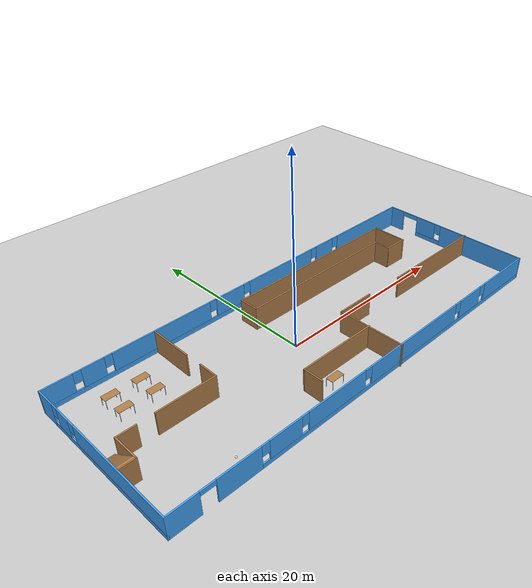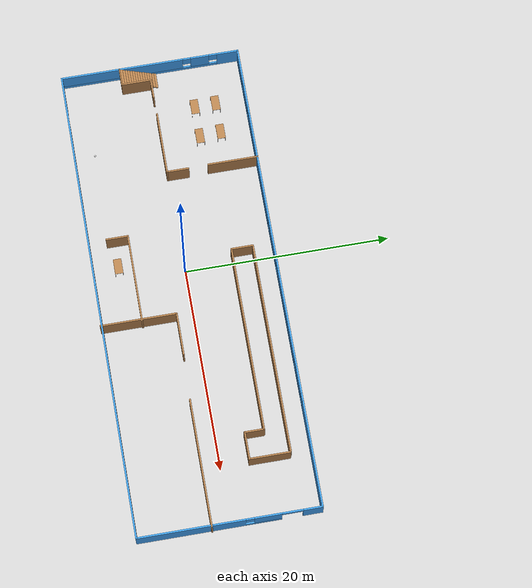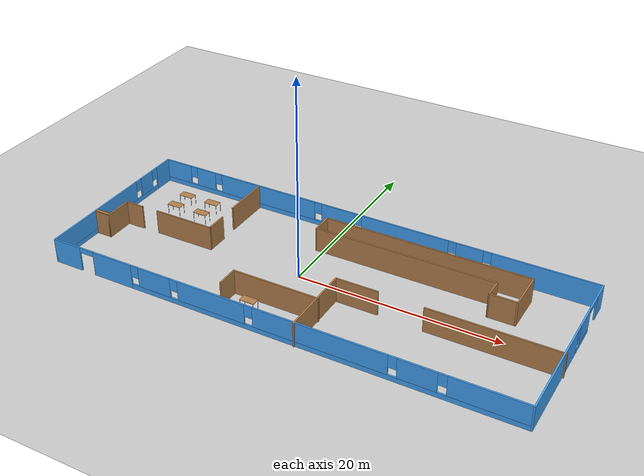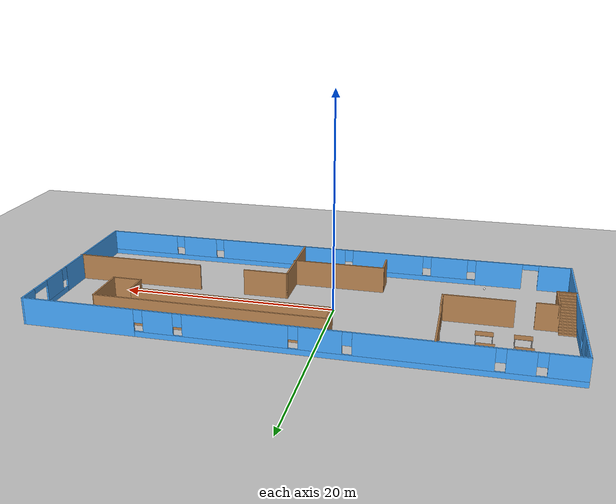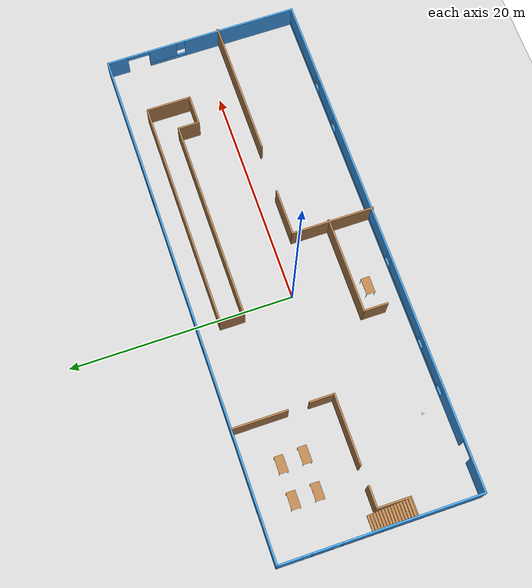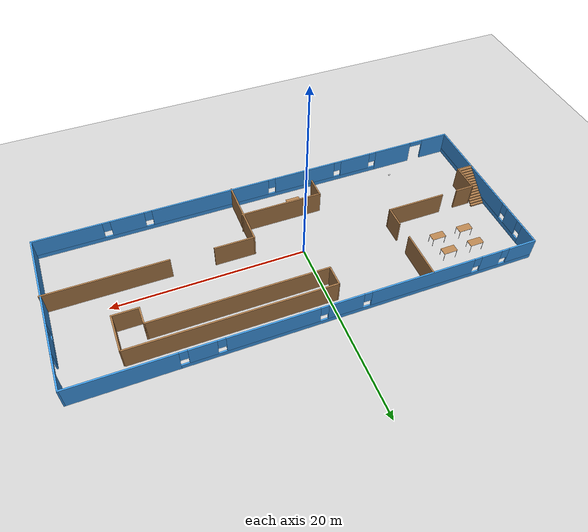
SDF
<sdf version="1.7">
 <world name="default">
  <plugin name="welcome" filename="libwelcome.so"/>
  <light name="sun" type="directional">
   <pose>0 0 10 0 -0 0</pose>
   <diffuse>0.8 0.8 0.8 1</diffuse>
   <specular>0.2 0.2 0.2 1</specular>
   <attenuation>
    <range>1000</range>
    <constant>0.9</constant>
    <linear>0.01</linear>
    <quadratic>0.001</quadratic>
   </attenuation>
   <direction>-0.5 0.1 -0.9</direction>
   <spot><inner_angle>0</inner_angle><outer_angle>0</outer_angle><falloff>0</falloff></spot>
  </light>
  <model name="ground_plane">
   <static>1</static>
   <link name="link">
    <collision name="collision">
     <geometry><plane><normal>0 0 1</normal><size>100 100</size></plane></geometry>
     <surface>
      <contact><collide_bitmask>65535</collide_bitmask></contact>
      <friction><ode><mu>100</mu><mu2>50</mu2></ode></friction>
     </surface>
    </collision>
    <visual name="visual">
     <cast_shadows>0</cast_shadows>
     <geometry><plane><normal>0 0 1</normal><size>100 100</size></plane></geometry>
     <material>
      <script><uri>file://media/materials/scripts/gazebo.material</uri><name>Gazebo/Grey</name></script>
     </material>
    </visual>
   </link>
  </model>
  <gravity>0 0 -9.8</gravity>
  <magnetic_field>6e-06 2.3e-05 -4.2e-05</magnetic_field>
  <atmosphere type="adiabatic"/>
  <physics type="ode">
   <max_step_size>0.001</max_step_size>
   <real_time_factor>1</real_time_factor>
   <real_time_update_rate>1000</real_time_update_rate>
  </physics>
  <scene><ambient>0.4 0.4 0.4 1</ambient><background>0.7 0.7 0.7 1</background><shadows>1</shadows></scene>
  <audio><device>default</device></audio>
  <spherical_coordinates>
   <surface_model>EARTH_WGS84</surface_model>
   <latitude_deg>0</latitude_deg>
   <longitude_deg>0</longitude_deg>
   <elevation>0</elevation>
   <heading_deg>0</heading_deg>
  </spherical_coordinates>
  <model name="building">
   <pose>2.33093 -0.091325 0 0 -0 0</pose>
   <link name="Stairs_0">
    <visual name="Stairs_0_Visual_0">
     <pose>-22.5369 0.453542 0.083333 0 -0 0</pose>
     <geometry><box><size>1.49222 0.233333 0.166667</size></box></geometry>
     <material>
      <script><uri>file://media/materials/scripts/gazebo.material</uri><name>Gazebo/Wood</name></script>
      <ambient>1 1 1 1</ambient>
     </material>
     <meta><layer>0</layer></meta>
    </visual>
    <collision name="Stairs_0_Collision_0">
     <geometry><box><size>1.49222 0.233333 0.166667</size></box></geometry>
     <pose>-22.5369 0.453542 0.083333 0 -0 0</pose>
    </collision>
    <visual name="Stairs_0_Visual_1">
     <pose>-22.5369 0.220208 0.25 0 -0 0</pose>
     <geometry><box><size>1.49222 0.233333 0.166667</size></box></geometry>
     <material>
      <script><uri>file://media/materials/scripts/gazebo.material</uri><name>Gazebo/Wood</name></script>
      <ambient>1 1 1 1</ambient>
     </material>
     <meta><layer>0</layer></meta>
    </visual>
    <collision name="Stairs_0_Collision_1">
     <geometry><box><size>1.49222 0.233333 0.166667</size></box></geometry>
     <pose>-22.5369 0.220208 0.25 0 -0 0</pose>
    </collision>
    <visual name="Stairs_0_Visual_2">
     <pose>-22.5369 -0.013125 0.416667 0 -0 0</pose>
     <geometry><box><size>1.49222 0.233333 0.166667</size></box></geometry>
     <material>
      <script><uri>file://media/materials/scripts/gazebo.material</uri><name>Gazebo/Wood</name></script>
      <ambient>1 1 1 1</ambient>
     </material>
     <meta><layer>0</layer></meta>
    </visual>
    <collision name="Stairs_0_Collision_2">
     <geometry><box><size>1.49222 0.233333 0.166667</size></box></geometry>
     <pose>-22.5369 -0.013125 0.416667 0 -0 0</pose>
    </collision>
    <visual name="Stairs_0_Visual_3">
     <pose>-22.5369 -0.246458 0.583333 0 -0 0</pose>
     <geometry><box><size>1.49222 0.233333 0.166667</size></box></geometry>
     <material>
      <script><uri>file://media/materials/scripts/gazebo.material</uri><name>Gazebo/Wood</name></script>
      <ambient>1 1 1 1</ambient>
     </material>
     <meta><layer>0</layer></meta>
    </visual>
    <collision name="Stairs_0_Collision_3">
     <geometry><box><size>1.49222 0.233333 0.166667</size></box></geometry>
     <pose>-22.5369 -0.246458 0.583333 0 -0 0</pose>
    </collision>
    <visual name="Stairs_0_Visual_4">
     <pose>-22.5369 -0.479792 0.75 0 -0 0</pose>
     <geometry><box><size>1.49222 0.233333 0.166667</size></box></geometry>
     <material>
      <script><uri>file://media/materials/scripts/gazebo.material</uri><name>Gazebo/Wood</name></script>
      <ambient>1 1 1 1</ambient>
     </material>
     <meta><layer>0</layer></meta>
    </visual>
    <collision name="Stairs_0_Collision_4">
     <geometry><box><size>1.49222 0.233333 0.166667</size></box></geometry>
     <pose>-22.5369 -0.479792 0.75 0 -0 0</pose>
    </collision>
    <visual name="Stairs_0_Visual_5">
     <pose>-22.5369 -0.713125 0.916667 0 -0 0</pose>
     <geometry><box><size>1.49222 0.233333 0.166667</size></box></geometry>
     <material>
      <script><uri>file://media/materials/scripts/gazebo.material</uri><name>Gazebo/Wood</name></script>
      <ambient>1 1 1 1</ambient>
     </material>
     <meta><layer>0</layer></meta>
    </visual>
    <collision name="Stairs_0_Collision_5">
     <geometry><box><size>1.49222 0.233333 0.166667</size></box></geometry>
     <pose>-22.5369 -0.713125 0.916667 0 -0 0</pose>
    </collision>
    <visual name="Stairs_0_Visual_6">
     <pose>-22.5369 -0.946458 1.08333 0 -0 0</pose>
     <geometry><box><size>1.49222 0.233333 0.166667</size></box></geometry>
     <material>
      <script><uri>file://media/materials/scripts/gazebo.material</uri><name>Gazebo/Wood</name></script>
      <ambient>1 1 1 1</ambient>
     </material>
     <meta><layer>0</layer></meta>
    </visual>
    <collision name="Stairs_0_Collision_6">
     <geometry><box><size>1.49222 0.233333 0.166667</size></box></geometry>
     <pose>-22.5369 -0.946458 1.08333 0 -0 0</pose>
    </collision>
    <visual name="Stairs_0_Visual_7">
     <pose>-22.5369 -1.17979 1.25 0 -0 0</pose>
     <geometry><box><size>1.49222 0.233333 0.166667</size></box></geometry>
     <material>
      <script><uri>file://media/materials/scripts/gazebo.material</uri><name>Gazebo/Wood</name></script>
      <ambient>1 1 1 1</ambient>
     </material>
     <meta><layer>0</layer></meta>
    </visual>
    <collision name="Stairs_0_Collision_7">
     <geometry><box><size>1.49222 0.233333 0.166667</size></box></geometry>
     <pose>-22.5369 -1.17979 1.25 0 -0 0</pose>
    </collision>
    <visual name="Stairs_0_Visual_8">
     <pose>-22.5369 -1.41312 1.41667 0 -0 0</pose>
     <geometry><box><size>1.49222 0.233333 0.166667</size></box></geometry>
     <material>
      <script><uri>file://media/materials/scripts/gazebo.material</uri><name>Gazebo/Wood</name></script>
      <ambient>1 1 1 1</ambient>
     </material>
     <meta><layer>0</layer></meta>
    </visual>
    <collision name="Stairs_0_Collision_8">
     <geometry><box><size>1.49222 0.233333 0.166667</size></box></geometry>
     <pose>-22.5369 -1.41312 1.41667 0 -0 0</pose>
    </collision>
    <visual name="Stairs_0_Visual_9">
     <pose>-22.5369 -1.64646 1.58333 0 -0 0</pose>
     <geometry><box><size>1.49222 0.233333 0.166667</size></box></geometry>
     <material>
      <script><uri>file://media/materials/scripts/gazebo.material</uri><name>Gazebo/Wood</name></script>
      <ambient>1 1 1 1</ambient>
     </material>
     <meta><layer>0</layer></meta>
    </visual>
    <collision name="Stairs_0_Collision_9">
     <geometry><box><size>1.49222 0.233333 0.166667</size></box></geometry>
     <pose>-22.5369 -1.64646 1.58333 0 -0 0</pose>
    </collision>
    <visual name="Stairs_0_Visual_10">
     <pose>-22.5369 -1.87979 1.75 0 -0 0</pose>
     <geometry><box><size>1.49222 0.233333 0.166667</size></box></geometry>
     <material>
      <script><uri>file://media/materials/scripts/gazebo.material</uri><name>Gazebo/Wood</name></script>
      <ambient>1 1 1 1</ambient>
     </material>
     <meta><layer>0</layer></meta>
    </visual>
    <collision name="Stairs_0_Collision_10">
     <geometry><box><size>1.49222 0.233333 0.166667</size></box></geometry>
     <pose>-22.5369 -1.87979 1.75 0 -0 0</pose>
    </collision>
    <visual name="Stairs_0_Visual_11">
     <pose>-22.5369 -2.11313 1.91667 0 -0 0</pose>
     <geometry><box><size>1.49222 0.233333 0.166667</size></box></geometry>
     <material>
      <script><uri>file://media/materials/scripts/gazebo.material</uri><name>Gazebo/Wood</name></script>
      <ambient>1 1 1 1</ambient>
     </material>
     <meta><layer>0</layer></meta>
    </visual>
    <collision name="Stairs_0_Collision_11">
     <geometry><box><size>1.49222 0.233333 0.166667</size></box></geometry>
     <pose>-22.5369 -2.11313 1.91667 0 -0 0</pose>
    </collision>
    <visual name="Stairs_0_Visual_12">
     <pose>-22.5369 -2.34646 2.08333 0 -0 0</pose>
     <geometry><box><size>1.49222 0.233333 0.166667</size></box></geometry>
     <material>
      <script><uri>file://media/materials/scripts/gazebo.material</uri><name>Gazebo/Wood</name></script>
      <ambient>1 1 1 1</ambient>
     </material>
     <meta><layer>0</layer></meta>
    </visual>
    <collision name="Stairs_0_Collision_12">
     <geometry><box><size>1.49222 0.233333 0.166667</size></box></geometry>
     <pose>-22.5369 -2.34646 2.08333 0 -0 0</pose>
    </collision>
    <visual name="Stairs_0_Visual_13">
     <pose>-22.5369 -2.57979 2.25 0 -0 0</pose>
     <geometry><box><size>1.49222 0.233333 0.166667</size></box></geometry>
     <material>
      <script><uri>file://media/materials/scripts/gazebo.material</uri><name>Gazebo/Wood</name></script>
      <ambient>1 1 1 1</ambient>
     </material>
     <meta><layer>0</layer></meta>
    </visual>
    <collision name="Stairs_0_Collision_13">
     <geometry><box><size>1.49222 0.233333 0.166667</size></box></geometry>
     <pose>-22.5369 -2.57979 2.25 0 -0 0</pose>
    </collision>
    <visual name="Stairs_0_Visual_14">
     <pose>-22.5369 -2.81312 2.41667 0 -0 0</pose>
     <geometry><box><size>1.49222 0.233333 0.166667</size></box></geometry>
     <material>
      <script><uri>file://media/materials/scripts/gazebo.material</uri><name>Gazebo/Wood</name></script>
      <ambient>1 1 1 1</ambient>
     </material>
     <meta><layer>0</layer></meta>
    </visual>
    <collision name="Stairs_0_Collision_14">
     <geometry><box><size>1.49222 0.233333 0.166667</size></box></geometry>
     <pose>-22.5369 -2.81312 2.41667 0 -0 0</pose>
    </collision>
   </link>
   <link name="Wall_10">
    <collision name="Wall_10_Collision">
     <geometry><box><size>2.25 0.15 2.5</size></box></geometry>
     <pose>0 0 1.25 0 -0 0</pose>
    </collision>
    <visual name="Wall_10_Visual">
     <pose>0 0 1.25 0 -0 0</pose>
     <geometry><box><size>2.25 0.15 2.5</size></box></geometry>
     <material>
      <script><uri>file://media/materials/scripts/gazebo.material</uri><name>Gazebo/Wood</name></script>
      <ambient>1 1 1 1</ambient>
     </material>
     <meta><layer>0</layer></meta>
    </visual>
    <pose>-11.9541 0.969658 0 0 -0 -1.5708</pose>
   </link>
   <link name="Wall_11">
    <collision name="Wall_11_Collision">
     <geometry><box><size>6.25 0.15 2.5</size></box></geometry>
     <pose>0 0 1.25 0 -0 0</pose>
    </collision>
    <visual name="Wall_11_Visual">
     <pose>0 0 1.25 0 -0 0</pose>
     <geometry><box><size>6.25 0.15 2.5</size></box></geometry>
     <material>
      <script><uri>file://media/materials/scripts/gazebo.material</uri><name>Gazebo/Wood</name></script>
      <ambient>1 1 1 1</ambient>
     </material>
     <meta><layer>0</layer></meta>
    </visual>
    <pose>-15.0041 -0.080342 0 0 -0 3.14159</pose>
   </link>
   <link name="Wall_13">
    <collision name="Wall_13_Collision">
     <geometry><box><size>1.75 0.15 2.5</size></box></geometry>
     <pose>0 0 1.25 0 -0 0</pose>
    </collision>
    <visual name="Wall_13_Visual">
     <pose>0 0 1.25 0 -0 0</pose>
     <geometry><box><size>1.75 0.15 2.5</size></box></geometry>
     <material>
      <script><uri>file://media/materials/scripts/gazebo.material</uri><name>Gazebo/Wood</name></script>
      <ambient>1 1 1 1</ambient>
     </material>
     <meta><layer>0</layer></meta>
    </visual>
    <pose>-22.5367 -2.9641 0 0 -0 0</pose>
   </link>
   <link name="Wall_14">
    <collision name="Wall_14_Collision">
     <geometry><box><size>3 0.15 2.5</size></box></geometry>
     <pose>0 0 1.25 0 -0 0</pose>
    </collision>
    <visual name="Wall_14_Visual">
     <pose>0 0 1.25 0 -0 0</pose>
     <geometry><box><size>3 0.15 2.5</size></box></geometry>
     <material>
      <script><uri>file://media/materials/scripts/gazebo.material</uri><name>Gazebo/Wood</name></script>
      <ambient>1 1 1 1</ambient>
     </material>
     <meta><layer>0</layer></meta>
    </visual>
    <pose>-21.7367 -1.5391 0 0 -0 1.5708</pose>
   </link>
   <link name="Wall_15">
    <collision name="Wall_15_Collision">
     <geometry><box><size>2 0.15 2.5</size></box></geometry>
     <pose>0 0 1.25 0 -0 0</pose>
    </collision>
    <visual name="Wall_15_Visual">
     <pose>0 0 1.25 0 -0 0</pose>
     <geometry><box><size>2 0.15 2.5</size></box></geometry>
     <material>
      <script><uri>file://media/materials/scripts/gazebo.material</uri><name>Gazebo/Wood</name></script>
      <ambient>1 1 1 1</ambient>
     </material>
     <meta><layer>0</layer></meta>
    </visual>
    <pose>-20.8117 -0.1141 0 0 -0 0</pose>
   </link>
   <link name="Wall_17">
    <collision name="Wall_17_Collision">
     <geometry><box><size>7.5 0.15 2.5</size></box></geometry>
     <pose>0 0 1.25 0 -0 0</pose>
    </collision>
    <visual name="Wall_17_Visual">
     <pose>0 0 1.25 0 -0 0</pose>
     <geometry><box><size>7.5 0.15 2.5</size></box></geometry>
     <material>
      <script><uri>file://media/materials/scripts/gazebo.material</uri><name>Gazebo/Wood</name></script>
      <ambient>1 1 1 1</ambient>
     </material>
     <meta><layer>0</layer></meta>
    </visual>
    <pose>2.40023 -5.17853 0 0 -0 1.5708</pose>
   </link>
   <link name="Wall_18">
    <collision name="Wall_18_Collision">
     <geometry><box><size>4.25 0.15 2.5</size></box></geometry>
     <pose>0 0 1.25 0 -0 0</pose>
    </collision>
    <visual name="Wall_18_Visual">
     <pose>0 0 1.25 0 -0 0</pose>
     <geometry><box><size>4.25 0.15 2.5</size></box></geometry>
     <material>
      <script><uri>file://media/materials/scripts/gazebo.material</uri><name>Gazebo/Wood</name></script>
      <ambient>1 1 1 1</ambient>
     </material>
     <meta><layer>0</layer></meta>
    </visual>
    <pose>4.45023 -1.50353 0 0 -0 0</pose>
   </link>
   <link name="Wall_20">
    <collision name="Wall_20_Collision">
     <geometry><box><size>12.5 0.15 2.5</size></box></geometry>
     <pose>0 0 1.25 0 -0 0</pose>
    </collision>
    <visual name="Wall_20_Visual">
     <pose>0 0 1.25 0 -0 0</pose>
     <geometry><box><size>12.5 0.15 2.5</size></box></geometry>
     <material>
      <script><uri>file://media/materials/scripts/gazebo.material</uri><name>Gazebo/Wood</name></script>
      <ambient>1 1 1 1</ambient>
     </material>
     <meta><layer>0</layer></meta>
    </visual>
    <pose>17.1842 -1.64348 0 0 -0 0</pose>
   </link>
   <link name="Wall_22">
    <collision name="Wall_22_Collision">
     <geometry><box><size>8.75 0.15 2.5</size></box></geometry>
     <pose>0 0 1.25 0 -0 0</pose>
    </collision>
    <visual name="Wall_22_Visual">
     <pose>0 0 1.25 0 -0 0</pose>
     <geometry><box><size>8.75 0.15 2.5</size></box></geometry>
     <material>
      <script><uri>file://media/materials/scripts/gazebo.material</uri><name>Gazebo/Wood</name></script>
      <ambient>1 1 1 1</ambient>
     </material>
     <meta><layer>0</layer></meta>
    </visual>
    <pose>-1.79216 -4.87186 0 0 -0 3.14159</pose>
   </link>
   <link name="Wall_23">
    <collision name="Wall_23_Collision">
     <geometry><box><size>2.25 0.15 2.5</size></box></geometry>
     <pose>0 0 1.25 0 -0 0</pose>
    </collision>
    <visual name="Wall_23_Visual">
     <pose>0 0 1.25 0 -0 0</pose>
     <geometry><box><size>2.25 0.15 2.5</size></box></geometry>
     <material>
      <script><uri>file://media/materials/scripts/gazebo.material</uri><name>Gazebo/Wood</name></script>
      <ambient>1 1 1 1</ambient>
     </material>
     <meta><layer>0</layer></meta>
    </visual>
    <pose>-6.09216 -5.92186 0 0 -0 -1.5708</pose>
   </link>
   <link name="Wall_25">
    <collision name="Wall_25_Collision">
     <geometry><box><size>2.25 0.15 2.5</size></box></geometry>
     <pose>0 0 1.25 0 -0 0</pose>
    </collision>
    <visual name="Wall_25_Visual">
     <pose>0 0 1.25 0 -0 0</pose>
     <geometry><box><size>2.25 0.15 2.5</size></box></geometry>
     <material>
      <script><uri>file://media/materials/scripts/gazebo.material</uri><name>Gazebo/Wood</name></script>
      <ambient>1 1 1 1</ambient>
     </material>
     <meta><layer>0</layer></meta>
    </visual>
    <pose>-3.08802 5.80792 0 0 -0 -1.5708</pose>
   </link>
   <link name="Wall_26">
    <collision name="Wall_26_Collision">
     <geometry><box><size>18.25 0.15 2.5</size></box></geometry>
     <pose>0 0 1.25 0 -0 0</pose>
    </collision>
    <visual name="Wall_26_Visual">
     <pose>0 0 1.25 0 -0 0</pose>
     <geometry><box><size>18.25 0.15 2.5</size></box></geometry>
     <material>
      <script><uri>file://media/materials/scripts/gazebo.material</uri><name>Gazebo/Wood</name></script>
      <ambient>1 1 1 1</ambient>
     </material>
     <meta><layer>0</layer></meta>
    </visual>
    <pose>5.96199 4.75792 0 0 -0 0</pose>
   </link>
   <link name="Wall_27">
    <collision name="Wall_27_Collision">
     <geometry><box><size>2 0.15 2.5</size></box></geometry>
     <pose>0 0 1.25 0 -0 0</pose>
    </collision>
    <visual name="Wall_27_Visual">
     <pose>0 0 1.25 0 -0 0</pose>
     <geometry><box><size>2 0.15 2.5</size></box></geometry>
     <material>
      <script><uri>file://media/materials/scripts/gazebo.material</uri><name>Gazebo/Wood</name></script>
      <ambient>1 1 1 1</ambient>
     </material>
     <meta><layer>0</layer></meta>
    </visual>
    <pose>15.012 3.83292 0 0 -0 -1.5708</pose>
   </link>
   <link name="Wall_28">
    <collision name="Wall_28_Collision">
     <geometry><box><size>2.75 0.15 2.5</size></box></geometry>
     <pose>0 0 1.25 0 -0 0</pose>
    </collision>
    <visual name="Wall_28_Visual">
     <pose>0 0 1.25 0 -0 0</pose>
     <geometry><box><size>2.75 0.15 2.5</size></box></geometry>
     <material>
      <script><uri>file://media/materials/scripts/gazebo.material</uri><name>Gazebo/Wood</name></script>
      <ambient>1 1 1 1</ambient>
     </material>
     <meta><layer>0</layer></meta>
    </visual>
    <pose>16.312 2.90792 0 0 -0 0</pose>
   </link>
   <link name="Wall_29">
    <collision name="Wall_29_Collision">
     <geometry><box><size>4.03477 0.15 2.5</size></box></geometry>
     <pose>0 0 1.25 0 -0 0</pose>
    </collision>
    <visual name="Wall_29_Visual">
     <pose>0 0 1.25 0 -0 0</pose>
     <geometry><box><size>4.03477 0.15 2.5</size></box></geometry>
     <material>
      <script><uri>file://media/materials/scripts/gazebo.material</uri><name>Gazebo/Wood</name></script>
      <ambient>1 1 1 1</ambient>
     </material>
     <meta><layer>0</layer></meta>
    </visual>
    <pose>17.612 4.8503 0 0 -0 1.5708</pose>
   </link>
   <link name="Wall_3">
    <pose>-23.3592 0.053528 0 0 -0 -1.5708</pose>
    <visual name="Wall_3_Visual_0">
     <pose>-7.78298 0 1.25 0 -0 0</pose>
     <geometry><box><size>2.18405 0.15 2.5</size></box></geometry>
     <material>
      <script><uri>file://media/materials/scripts/gazebo.material</uri><name>Gazebo/Grey</name></script>
      <ambient>0.258824 0.635294 0.960784 1</ambient>
     </material>
     <meta><layer>0</layer></meta>
    </visual>
    <collision name="Wall_3_Collision_0">
     <geometry><box><size>2.18405 0.15 2.5</size></box></geometry>
     <pose>-7.78298 0 1.25 0 -0 0</pose>
    </collision>
    <visual name="Wall_3_Visual_1">
     <pose>1.09202 0 0.25 0 -0 0</pose>
     <geometry><box><size>15.566 0.15 0.5</size></box></geometry>
     <material>
      <script><uri>file://media/materials/scripts/gazebo.material</uri><name>Gazebo/Grey</name></script>
      <ambient>0.258824 0.635294 0.960784 1</ambient>
     </material>
     <meta><layer>0</layer></meta>
    </visual>
    <collision name="Wall_3_Collision_1">
     <geometry><box><size>15.566 0.15 0.5</size></box></geometry>
     <pose>1.09202 0 0.25 0 -0 0</pose>
    </collision>
    <visual name="Wall_3_Visual_2">
     <pose>-4.98014 0 1.5 0 -0 0</pose>
     <geometry><box><size>1.82162 0.15 2</size></box></geometry>
     <material>
      <script><uri>file://media/materials/scripts/gazebo.material</uri><name>Gazebo/Grey</name></script>
      <ambient>0.258824 0.635294 0.960784 1</ambient>
     </material>
     <meta><layer>0</layer></meta>
    </visual>
    <collision name="Wall_3_Collision_2">
     <geometry><box><size>1.82162 0.15 2</size></box></geometry>
     <pose>-4.98014 0 1.5 0 -0 0</pose>
    </collision>
    <visual name="Wall_3_Visual_3">
     <pose>2.80283 0 1.5 0 -0 0</pose>
     <geometry><box><size>12.1443 0.15 2</size></box></geometry>
     <material>
      <script><uri>file://media/materials/scripts/gazebo.material</uri><name>Gazebo/Grey</name></script>
      <ambient>0.258824 0.635294 0.960784 1</ambient>
     </material>
     <meta><layer>0</layer></meta>
    </visual>
    <collision name="Wall_3_Collision_3">
     <geometry><box><size>12.1443 0.15 2</size></box></geometry>
     <pose>2.80283 0 1.5 0 -0 0</pose>
    </collision>
    <visual name="Wall_3_Visual_4">
     <pose>-6.29095 0 1.9 0 -0 0</pose>
     <geometry><box><size>0.8 0.15 1.2</size></box></geometry>
     <material>
      <script><uri>file://media/materials/scripts/gazebo.material</uri><name>Gazebo/Grey</name></script>
      <ambient>0.258824 0.635294 0.960784 1</ambient>
     </material>
     <meta><layer>0</layer></meta>
    </visual>
    <collision name="Wall_3_Collision_4">
     <geometry><box><size>0.8 0.15 1.2</size></box></geometry>
     <pose>-6.29095 0 1.9 0 -0 0</pose>
    </collision>
    <visual name="Wall_3_Visual_5">
     <pose>-3.66933 0 1.9 0 -0 0</pose>
     <geometry><box><size>0.8 0.15 1.2</size></box></geometry>
     <material>
      <script><uri>file://media/materials/scripts/gazebo.material</uri><name>Gazebo/Grey</name></script>
      <ambient>0.258824 0.635294 0.960784 1</ambient>
     </material>
     <meta><layer>0</layer></meta>
    </visual>
    <collision name="Wall_3_Collision_5">
     <geometry><box><size>0.8 0.15 1.2</size></box></geometry>
     <pose>-3.66933 0 1.9 0 -0 0</pose>
    </collision>
   </link>
   <link name="Wall_32">
    <collision name="Wall_32_Collision">
     <geometry><box><size>20.75 0.15 2.5</size></box></geometry>
     <pose>0 0 1.25 0 -0 0</pose>
    </collision>
    <visual name="Wall_32_Visual">
     <pose>0 0 1.25 0 -0 0</pose>
     <geometry><box><size>20.75 0.15 2.5</size></box></geometry>
     <material>
      <script><uri>file://media/materials/scripts/gazebo.material</uri><name>Gazebo/Wood</name></script>
      <ambient>1 1 1 1</ambient>
     </material>
     <meta><layer>0</layer></meta>
    </visual>
    <pose>7.21199 6.85792 0 0 -0 0</pose>
   </link>
   <link name="Wall_4">
    <pose>-0.05924 -8.74647 0 0 -0 0</pose>
    <visual name="Wall_4_Visual_0">
     <pose>-21.8554 0 1.25 0 -0 0</pose>
     <geometry><box><size>3.03917 0.15 2.5</size></box></geometry>
     <material>
      <script><uri>file://media/materials/scripts/gazebo.material</uri><name>Gazebo/Grey</name></script>
      <ambient>0.258824 0.635294 0.960784 1</ambient>
     </material>
     <meta><layer>0</layer></meta>
    </visual>
    <collision name="Wall_4_Collision_0">
     <geometry><box><size>3.03917 0.15 2.5</size></box></geometry>
     <pose>-21.8554 0 1.25 0 -0 0</pose>
    </collision>
    <visual name="Wall_4_Visual_1">
     <pose>-16.6693 0 1.25 0 -0 0</pose>
     <geometry><box><size>4.33312 0.15 2.5</size></box></geometry>
     <material>
      <script><uri>file://media/materials/scripts/gazebo.material</uri><name>Gazebo/Grey</name></script>
      <ambient>0.258824 0.635294 0.960784 1</ambient>
     </material>
     <meta><layer>0</layer></meta>
    </visual>
    <collision name="Wall_4_Collision_1">
     <geometry><box><size>4.33312 0.15 2.5</size></box></geometry>
     <pose>-16.6693 0 1.25 0 -0 0</pose>
    </collision>
    <visual name="Wall_4_Visual_2">
     <pose>4.43614 0 0.25 0 -0 0</pose>
     <geometry><box><size>37.8777 0.15 0.5</size></box></geometry>
     <material>
      <script><uri>file://media/materials/scripts/gazebo.material</uri><name>Gazebo/Grey</name></script>
      <ambient>0.258824 0.635294 0.960784 1</ambient>
     </material>
     <meta><layer>0</layer></meta>
    </visual>
    <collision name="Wall_4_Collision_2">
     <geometry><box><size>37.8777 0.15 0.5</size></box></geometry>
     <pose>4.43614 0 0.25 0 -0 0</pose>
    </collision>
    <visual name="Wall_4_Visual_3">
     <pose>-11.9626 0 1.5 0 -0 0</pose>
     <geometry><box><size>3.4802 0.15 2</size></box></geometry>
     <material>
      <script><uri>file://media/materials/scripts/gazebo.material</uri><name>Gazebo/Grey</name></script>
      <ambient>0.258824 0.635294 0.960784 1</ambient>
     </material>
     <meta><layer>0</layer></meta>
    </visual>
    <collision name="Wall_4_Collision_3">
     <geometry><box><size>3.4802 0.15 2</size></box></geometry>
     <pose>-11.9626 0 1.5 0 -0 0</pose>
    </collision>
    <visual name="Wall_4_Visual_4">
     <pose>-5.94358 0 1.5 0 -0 0</pose>
     <geometry><box><size>6.95786 0.15 2</size></box></geometry>
     <material>
      <script><uri>file://media/materials/scripts/gazebo.material</uri><name>Gazebo/Grey</name></script>
      <ambient>0.258824 0.635294 0.960784 1</ambient>
     </material>
     <meta><layer>0</layer></meta>
    </visual>
    <collision name="Wall_4_Collision_4">
     <geometry><box><size>6.95786 0.15 2</size></box></geometry>
     <pose>-5.94358 0 1.5 0 -0 0</pose>
    </collision>
    <visual name="Wall_4_Visual_5">
     <pose>4.73017 0 1.5 0 -0 0</pose>
     <geometry><box><size>12.7896 0.15 2</size></box></geometry>
     <material>
      <script><uri>file://media/materials/scripts/gazebo.material</uri><name>Gazebo/Grey</name></script>
      <ambient>0.258824 0.635294 0.960784 1</ambient>
     </material>
     <meta><layer>0</layer></meta>
    </visual>
    <collision name="Wall_4_Collision_5">
     <geometry><box><size>12.7896 0.15 2</size></box></geometry>
     <pose>4.73017 0 1.5 0 -0 0</pose>
    </collision>
    <visual name="Wall_4_Visual_6">
     <pose>13.6918 0 1.5 0 -0 0</pose>
     <geometry><box><size>3.5337 0.15 2</size></box></geometry>
     <material>
      <script><uri>file://media/materials/scripts/gazebo.material</uri><name>Gazebo/Grey</name></script>
      <ambient>0.258824 0.635294 0.960784 1</ambient>
     </material>
     <meta><layer>0</layer></meta>
    </visual>
    <collision name="Wall_4_Collision_6">
     <geometry><box><size>3.5337 0.15 2</size></box></geometry>
     <pose>13.6918 0 1.5 0 -0 0</pose>
    </collision>
    <visual name="Wall_4_Visual_7">
     <pose>19.8168 0 1.5 0 -0 0</pose>
     <geometry><box><size>7.11631 0.15 2</size></box></geometry>
     <material>
      <script><uri>file://media/materials/scripts/gazebo.material</uri><name>Gazebo/Grey</name></script>
      <ambient>0.258824 0.635294 0.960784 1</ambient>
     </material>
     <meta><layer>0</layer></meta>
    </visual>
    <collision name="Wall_4_Collision_7">
     <geometry><box><size>7.11631 0.15 2</size></box></geometry>
     <pose>19.8168 0 1.5 0 -0 0</pose>
    </collision>
    <visual name="Wall_4_Visual_8">
     <pose>-14.1027 0 1.9 0 -0 0</pose>
     <geometry><box><size>0.8 0.15 1.2</size></box></geometry>
     <material>
      <script><uri>file://media/materials/scripts/gazebo.material</uri><name>Gazebo/Grey</name></script>
      <ambient>0.258824 0.635294 0.960784 1</ambient>
     </material>
     <meta><layer>0</layer></meta>
    </visual>
    <collision name="Wall_4_Collision_8">
     <geometry><box><size>0.8 0.15 1.2</size></box></geometry>
     <pose>-14.1027 0 1.9 0 -0 0</pose>
    </collision>
    <visual name="Wall_4_Visual_9">
     <pose>-9.82251 0 1.9 0 -0 0</pose>
     <geometry><box><size>0.8 0.15 1.2</size></box></geometry>
     <material>
      <script><uri>file://media/materials/scripts/gazebo.material</uri><name>Gazebo/Grey</name></script>
      <ambient>0.258824 0.635294 0.960784 1</ambient>
     </material>
     <meta><layer>0</layer></meta>
    </visual>
    <collision name="Wall_4_Collision_9">
     <geometry><box><size>0.8 0.15 1.2</size></box></geometry>
     <pose>-9.82251 0 1.9 0 -0 0</pose>
    </collision>
    <visual name="Wall_4_Visual_10">
     <pose>-2.06465 0 1.9 0 -0 0</pose>
     <geometry><box><size>0.8 0.15 1.2</size></box></geometry>
     <material>
      <script><uri>file://media/materials/scripts/gazebo.material</uri><name>Gazebo/Grey</name></script>
      <ambient>0.258824 0.635294 0.960784 1</ambient>
     </material>
     <meta><layer>0</layer></meta>
    </visual>
    <collision name="Wall_4_Collision_10">
     <geometry><box><size>0.8 0.15 1.2</size></box></geometry>
     <pose>-2.06465 0 1.9 0 -0 0</pose>
    </collision>
    <visual name="Wall_4_Visual_11">
     <pose>11.525 0 1.9 0 -0 0</pose>
     <geometry><box><size>0.8 0.15 1.2</size></box></geometry>
     <material>
      <script><uri>file://media/materials/scripts/gazebo.material</uri><name>Gazebo/Grey</name></script>
      <ambient>0.258824 0.635294 0.960784 1</ambient>
     </material>
     <meta><layer>0</layer></meta>
    </visual>
    <collision name="Wall_4_Collision_11">
     <geometry><box><size>0.8 0.15 1.2</size></box></geometry>
     <pose>11.525 0 1.9 0 -0 0</pose>
    </collision>
    <visual name="Wall_4_Visual_12">
     <pose>15.8587 0 1.9 0 -0 0</pose>
     <geometry><box><size>0.8 0.15 1.2</size></box></geometry>
     <material>
      <script><uri>file://media/materials/scripts/gazebo.material</uri><name>Gazebo/Grey</name></script>
      <ambient>0.258824 0.635294 0.960784 1</ambient>
     </material>
     <meta><layer>0</layer></meta>
    </visual>
    <collision name="Wall_4_Collision_12">
     <geometry><box><size>0.8 0.15 1.2</size></box></geometry>
     <pose>15.8587 0 1.9 0 -0 0</pose>
    </collision>
    <visual name="Wall_4_Visual_13">
     <pose>-19.5858 0 2.25 0 -0 0</pose>
     <geometry><box><size>1.5 0.15 0.5</size></box></geometry>
     <material>
      <script><uri>file://media/materials/scripts/gazebo.material</uri><name>Gazebo/Grey</name></script>
      <ambient>0.258824 0.635294 0.960784 1</ambient>
     </material>
     <meta><layer>0</layer></meta>
    </visual>
    <collision name="Wall_4_Collision_13">
     <geometry><box><size>1.5 0.15 0.5</size></box></geometry>
     <pose>-19.5858 0 2.25 0 -0 0</pose>
    </collision>
   </link>
   <link name="Wall_5">
    <pose>23.2408 0.053528 0 0 -0 1.5708</pose>
    <visual name="Wall_5_Visual_0">
     <pose>-3.65888 0 1.25 0 -0 0</pose>
     <geometry><box><size>10.4323 0.15 2.5</size></box></geometry>
     <material>
      <script><uri>file://media/materials/scripts/gazebo.material</uri><name>Gazebo/Grey</name></script>
      <ambient>0.258824 0.635294 0.960784 1</ambient>
     </material>
     <meta><layer>0</layer></meta>
    </visual>
    <collision name="Wall_5_Collision_0">
     <geometry><box><size>10.4323 0.15 2.5</size></box></geometry>
     <pose>-3.65888 0 1.25 0 -0 0</pose>
    </collision>
    <visual name="Wall_5_Visual_1">
     <pose>7.92022 0 1.25 0 -0 0</pose>
     <geometry><box><size>1.90956 0.15 2.5</size></box></geometry>
     <material>
      <script><uri>file://media/materials/scripts/gazebo.material</uri><name>Gazebo/Grey</name></script>
      <ambient>0.258824 0.635294 0.960784 1</ambient>
     </material>
     <meta><layer>0</layer></meta>
    </visual>
    <collision name="Wall_5_Collision_1">
     <geometry><box><size>1.90956 0.15 2.5</size></box></geometry>
     <pose>7.92022 0 1.25 0 -0 0</pose>
    </collision>
    <visual name="Wall_5_Visual_2">
     <pose>3.26135 0 0.25 0 -0 0</pose>
     <geometry><box><size>3.40819 0.15 0.5</size></box></geometry>
     <material>
      <script><uri>file://media/materials/scripts/gazebo.material</uri><name>Gazebo/Grey</name></script>
      <ambient>0.258824 0.635294 0.960784 1</ambient>
     </material>
     <meta><layer>0</layer></meta>
    </visual>
    <collision name="Wall_5_Collision_2">
     <geometry><box><size>3.40819 0.15 0.5</size></box></geometry>
     <pose>3.26135 0 0.25 0 -0 0</pose>
    </collision>
    <visual name="Wall_5_Visual_3">
     <pose>3.66135 0 1.5 0 -0 0</pose>
     <geometry><box><size>2.60819 0.15 2</size></box></geometry>
     <material>
      <script><uri>file://media/materials/scripts/gazebo.material</uri><name>Gazebo/Grey</name></script>
      <ambient>0.258824 0.635294 0.960784 1</ambient>
     </material>
     <meta><layer>0</layer></meta>
    </visual>
    <collision name="Wall_5_Collision_3">
     <geometry><box><size>2.60819 0.15 2</size></box></geometry>
     <pose>3.66135 0 1.5 0 -0 0</pose>
    </collision>
    <visual name="Wall_5_Visual_4">
     <pose>1.95725 0 1.9 0 -0 0</pose>
     <geometry><box><size>0.8 0.15 1.2</size></box></geometry>
     <material>
      <script><uri>file://media/materials/scripts/gazebo.material</uri><name>Gazebo/Grey</name></script>
      <ambient>0.258824 0.635294 0.960784 1</ambient>
     </material>
     <meta><layer>0</layer></meta>
    </visual>
    <collision name="Wall_5_Collision_4">
     <geometry><box><size>0.8 0.15 1.2</size></box></geometry>
     <pose>1.95725 0 1.9 0 -0 0</pose>
    </collision>
    <visual name="Wall_5_Visual_5">
     <pose>5.96544 0 2.25 0 -0 0</pose>
     <geometry><box><size>2 0.15 0.5</size></box></geometry>
     <material>
      <script><uri>file://media/materials/scripts/gazebo.material</uri><name>Gazebo/Grey</name></script>
      <ambient>0.258824 0.635294 0.960784 1</ambient>
     </material>
     <meta><layer>0</layer></meta>
    </visual>
    <collision name="Wall_5_Collision_5">
     <geometry><box><size>2 0.15 0.5</size></box></geometry>
     <pose>5.96544 0 2.25 0 -0 0</pose>
    </collision>
   </link>
   <link name="Wall_6">
    <pose>-0.05924 8.85353 0 0 -0 3.14159</pose>
    <visual name="Wall_6_Visual_0">
     <pose>-18.185 0 1.25 0 -0 0</pose>
     <geometry><box><size>10.38 0.15 2.5</size></box></geometry>
     <material>
      <script><uri>file://media/materials/scripts/gazebo.material</uri><name>Gazebo/Grey</name></script>
      <ambient>0.258824 0.635294 0.960784 1</ambient>
     </material>
     <meta><layer>0</layer></meta>
    </visual>
    <collision name="Wall_6_Collision_0">
     <geometry><box><size>10.38 0.15 2.5</size></box></geometry>
     <pose>-18.185 0 1.25 0 -0 0</pose>
    </collision>
    <visual name="Wall_6_Visual_1">
     <pose>5.18998 0 0.25 0 -0 0</pose>
     <geometry><box><size>36.37 0.15 0.5</size></box></geometry>
     <material>
      <script><uri>file://media/materials/scripts/gazebo.material</uri><name>Gazebo/Grey</name></script>
      <ambient>0.258824 0.635294 0.960784 1</ambient>
     </material>
     <meta><layer>0</layer></meta>
    </visual>
    <collision name="Wall_6_Collision_1">
     <geometry><box><size>36.37 0.15 0.5</size></box></geometry>
     <pose>5.18998 0 0.25 0 -0 0</pose>
    </collision>
    <visual name="Wall_6_Visual_2">
     <pose>-10.8562 0 1.5 0 -0 0</pose>
     <geometry><box><size>2.67766 0.15 2</size></box></geometry>
     <material>
      <script><uri>file://media/materials/scripts/gazebo.material</uri><name>Gazebo/Grey</name></script>
      <ambient>0.258824 0.635294 0.960784 1</ambient>
     </material>
     <meta><layer>0</layer></meta>
    </visual>
    <collision name="Wall_6_Collision_2">
     <geometry><box><size>2.67766 0.15 2</size></box></geometry>
     <pose>-10.8562 0 1.5 0 -0 0</pose>
    </collision>
    <visual name="Wall_6_Visual_3">
     <pose>-4.19514 0 1.5 0 -0 0</pose>
     <geometry><box><size>9.04446 0.15 2</size></box></geometry>
     <material>
      <script><uri>file://media/materials/scripts/gazebo.material</uri><name>Gazebo/Grey</name></script>
      <ambient>0.258824 0.635294 0.960784 1</ambient>
     </material>
     <meta><layer>0</layer></meta>
    </visual>
    <collision name="Wall_6_Collision_3">
     <geometry><box><size>9.04446 0.15 2</size></box></geometry>
     <pose>-4.19514 0 1.5 0 -0 0</pose>
    </collision>
    <visual name="Wall_6_Visual_4">
     <pose>2.92069 0 1.5 0 -0 0</pose>
     <geometry><box><size>3.5872 0.15 2</size></box></geometry>
     <material>
      <script><uri>file://media/materials/scripts/gazebo.material</uri><name>Gazebo/Grey</name></script>
      <ambient>0.258824 0.635294 0.960784 1</ambient>
     </material>
     <meta><layer>0</layer></meta>
    </visual>
    <collision name="Wall_6_Collision_4">
     <geometry><box><size>3.5872 0.15 2</size></box></geometry>
     <pose>2.92069 0 1.5 0 -0 0</pose>
    </collision>
    <visual name="Wall_6_Visual_5">
     <pose>10.9996 0 1.5 0 -0 0</pose>
     <geometry><box><size>10.9705 0.15 2</size></box></geometry>
     <material>
      <script><uri>file://media/materials/scripts/gazebo.material</uri><name>Gazebo/Grey</name></script>
      <ambient>0.258824 0.635294 0.960784 1</ambient>
     </material>
     <meta><layer>0</layer></meta>
    </visual>
    <collision name="Wall_6_Collision_5">
     <geometry><box><size>10.9705 0.15 2</size></box></geometry>
     <pose>10.9996 0 1.5 0 -0 0</pose>
    </collision>
    <visual name="Wall_6_Visual_6">
     <pose>18.4097 0 1.5 0 -0 0</pose>
     <geometry><box><size>2.24964 0.15 2</size></box></geometry>
     <material>
      <script><uri>file://media/materials/scripts/gazebo.material</uri><name>Gazebo/Grey</name></script>
      <ambient>0.258824 0.635294 0.960784 1</ambient>
     </material>
     <meta><layer>0</layer></meta>
    </visual>
    <collision name="Wall_6_Collision_6">
     <geometry><box><size>2.24964 0.15 2</size></box></geometry>
     <pose>18.4097 0 1.5 0 -0 0</pose>
    </collision>
    <visual name="Wall_6_Visual_7">
     <pose>21.8547 0 1.5 0 -0 0</pose>
     <geometry><box><size>3.04052 0.15 2</size></box></geometry>
     <material>
      <script><uri>file://media/materials/scripts/gazebo.material</uri><name>Gazebo/Grey</name></script>
      <ambient>0.258824 0.635294 0.960784 1</ambient>
     </material>
     <meta><layer>0</layer></meta>
    </visual>
    <collision name="Wall_6_Collision_7">
     <geometry><box><size>3.04052 0.15 2</size></box></geometry>
     <pose>21.8547 0 1.5 0 -0 0</pose>
    </collision>
    <visual name="Wall_6_Visual_8">
     <pose>-12.595 0 1.9 0 -0 0</pose>
     <geometry><box><size>0.8 0.15 1.2</size></box></geometry>
     <material>
      <script><uri>file://media/materials/scripts/gazebo.material</uri><name>Gazebo/Grey</name></script>
      <ambient>0.258824 0.635294 0.960784 1</ambient>
     </material>
     <meta><layer>0</layer></meta>
    </visual>
    <collision name="Wall_6_Collision_8">
     <geometry><box><size>0.8 0.15 1.2</size></box></geometry>
     <pose>-12.595 0 1.9 0 -0 0</pose>
    </collision>
    <visual name="Wall_6_Visual_9">
     <pose>-9.11737 0 1.9 0 -0 0</pose>
     <geometry><box><size>0.8 0.15 1.2</size></box></geometry>
     <material>
      <script><uri>file://media/materials/scripts/gazebo.material</uri><name>Gazebo/Grey</name></script>
      <ambient>0.258824 0.635294 0.960784 1</ambient>
     </material>
     <meta><layer>0</layer></meta>
    </visual>
    <collision name="Wall_6_Collision_9">
     <geometry><box><size>0.8 0.15 1.2</size></box></geometry>
     <pose>-9.11737 0 1.9 0 -0 0</pose>
    </collision>
    <visual name="Wall_6_Visual_10">
     <pose>0.727087 0 1.9 0 -0 0</pose>
     <geometry><box><size>0.8 0.15 1.2</size></box></geometry>
     <material>
      <script><uri>file://media/materials/scripts/gazebo.material</uri><name>Gazebo/Grey</name></script>
      <ambient>0.258824 0.635294 0.960784 1</ambient>
     </material>
     <meta><layer>0</layer></meta>
    </visual>
    <collision name="Wall_6_Collision_10">
     <geometry><box><size>0.8 0.15 1.2</size></box></geometry>
     <pose>0.727087 0 1.9 0 -0 0</pose>
    </collision>
    <visual name="Wall_6_Visual_11">
     <pose>5.11429 0 1.9 0 -0 0</pose>
     <geometry><box><size>0.8 0.15 1.2</size></box></geometry>
     <material>
      <script><uri>file://media/materials/scripts/gazebo.material</uri><name>Gazebo/Grey</name></script>
      <ambient>0.258824 0.635294 0.960784 1</ambient>
     </material>
     <meta><layer>0</layer></meta>
    </visual>
    <collision name="Wall_6_Collision_11">
     <geometry><box><size>0.8 0.15 1.2</size></box></geometry>
     <pose>5.11429 0 1.9 0 -0 0</pose>
    </collision>
    <visual name="Wall_6_Visual_12">
     <pose>16.8848 0 1.9 0 -0 0</pose>
     <geometry><box><size>0.8 0.15 1.2</size></box></geometry>
     <material>
      <script><uri>file://media/materials/scripts/gazebo.material</uri><name>Gazebo/Grey</name></script>
      <ambient>0.258824 0.635294 0.960784 1</ambient>
     </material>
     <meta><layer>0</layer></meta>
    </visual>
    <collision name="Wall_6_Collision_12">
     <geometry><box><size>0.8 0.15 1.2</size></box></geometry>
     <pose>16.8848 0 1.9 0 -0 0</pose>
    </collision>
    <visual name="Wall_6_Visual_13">
     <pose>19.9345 0 1.9 0 -0 0</pose>
     <geometry><box><size>0.8 0.15 1.2</size></box></geometry>
     <material>
      <script><uri>file://media/materials/scripts/gazebo.material</uri><name>Gazebo/Grey</name></script>
      <ambient>0.258824 0.635294 0.960784 1</ambient>
     </material>
     <meta><layer>0</layer></meta>
    </visual>
    <collision name="Wall_6_Collision_13">
     <geometry><box><size>0.8 0.15 1.2</size></box></geometry>
     <pose>19.9345 0 1.9 0 -0 0</pose>
    </collision>
   </link>
   <link name="Wall_8">
    <collision name="Wall_8_Collision">
     <geometry><box><size>5 0.15 2.5</size></box></geometry>
     <pose>0 0 1.25 0 -0 0</pose>
    </collision>
    <visual name="Wall_8_Visual">
     <pose>0 0 1.25 0 -0 0</pose>
     <geometry><box><size>5 0.15 2.5</size></box></geometry>
     <material>
      <script><uri>file://media/materials/scripts/gazebo.material</uri><name>Gazebo/Wood</name></script>
      <ambient>1 1 1 1</ambient>
     </material>
     <meta><layer>0</layer></meta>
    </visual>
    <pose>-12.0156 6.42425 0 0 -0 -1.5708</pose>
   </link>
   <static>1</static>
  </model>
  <model name="table">
   <static>1</static>
   <link name="link">
    <collision name="surface">
     <pose>0 0 1 0 -0 0</pose>
     <geometry><box><size>1.5 0.8 0.03</size></box></geometry>
     <surface><friction><ode><mu>0.6</mu><mu2>0.6</mu2></ode></friction></surface>
    </collision>
    <visual name="visual1">
     <pose>0 0 1 0 -0 0</pose>
     <geometry><box><size>1.5 0.8 0.03</size></box></geometry>
     <material>
      <script><uri>file://media/materials/scripts/gazebo.material</uri><name>Gazebo/Wood</name></script>
     </material>
    </visual>
    <collision name="front_left_leg">
     <pose>0.68 0.38 0.5 0 -0 0</pose>
     <geometry><cylinder><radius>0.02</radius><length>1</length></cylinder></geometry>
    </collision>
    <visual name="front_left_leg">
     <pose>0.68 0.38 0.5 0 -0 0</pose>
     <geometry><cylinder><radius>0.02</radius><length>1</length></cylinder></geometry>
     <material>
      <script><uri>file://media/materials/scripts/gazebo.material</uri><name>Gazebo/Grey</name></script>
     </material>
    </visual>
    <collision name="front_right_leg">
     <pose>0.68 -0.38 0.5 0 -0 0</pose>
     <geometry><cylinder><radius>0.02</radius><length>1</length></cylinder></geometry>
    </collision>
    <visual name="front_right_leg">
     <pose>0.68 -0.38 0.5 0 -0 0</pose>
     <geometry><cylinder><radius>0.02</radius><length>1</length></cylinder></geometry>
     <material>
      <script><uri>file://media/materials/scripts/gazebo.material</uri><name>Gazebo/Grey</name></script>
     </material>
    </visual>
    <collision name="back_right_leg">
     <pose>-0.68 -0.38 0.5 0 -0 0</pose>
     <geometry><cylinder><radius>0.02</radius><length>1</length></cylinder></geometry>
    </collision>
    <visual name="back_right_leg">
     <pose>-0.68 -0.38 0.5 0 -0 0</pose>
     <geometry><cylinder><radius>0.02</radius><length>1</length></cylinder></geometry>
     <material>
      <script><uri>file://media/materials/scripts/gazebo.material</uri><name>Gazebo/Grey</name></script>
     </material>
    </visual>
    <collision name="back_left_leg">
     <pose>-0.68 0.38 0.5 0 -0 0</pose>
     <geometry><cylinder><radius>0.02</radius><length>1</length></cylinder></geometry>
    </collision>
    <visual name="back_left_leg">
     <pose>-0.68 0.38 0.5 0 -0 0</pose>
     <geometry><cylinder><radius>0.02</radius><length>1</length></cylinder></geometry>
     <material>
      <script><uri>file://media/materials/scripts/gazebo.material</uri><name>Gazebo/Grey</name></script>
     </material>
    </visual>
   </link>
   <pose>-16.4539 3.66903 0 0 -0 0</pose>
  </model>
  <model name="table_0">
   <static>1</static>
   <link name="link">
    <collision name="surface">
     <pose>0 0 1 0 -0 0</pose>
     <geometry><box><size>1.5 0.8 0.03</size></box></geometry>
     <surface><friction><ode><mu>0.6</mu><mu2>0.6</mu2></ode></friction></surface>
    </collision>
    <visual name="visual1">
     <pose>0 0 1 0 -0 0</pose>
     <geometry><box><size>1.5 0.8 0.03</size></box></geometry>
     <material>
      <script><uri>file://media/materials/scripts/gazebo.material</uri><name>Gazebo/Wood</name></script>
     </material>
    </visual>
    <collision name="front_left_leg">
     <pose>0.68 0.38 0.5 0 -0 0</pose>
     <geometry><cylinder><radius>0.02</radius><length>1</length></cylinder></geometry>
    </collision>
    <visual name="front_left_leg">
     <pose>0.68 0.38 0.5 0 -0 0</pose>
     <geometry><cylinder><radius>0.02</radius><length>1</length></cylinder></geometry>
     <material>
      <script><uri>file://media/materials/scripts/gazebo.material</uri><name>Gazebo/Grey</name></script>
     </material>
    </visual>
    <collision name="front_right_leg">
     <pose>0.68 -0.38 0.5 0 -0 0</pose>
     <geometry><cylinder><radius>0.02</radius><length>1</length></cylinder></geometry>
    </collision>
    <visual name="front_right_leg">
     <pose>0.68 -0.38 0.5 0 -0 0</pose>
     <geometry><cylinder><radius>0.02</radius><length>1</length></cylinder></geometry>
     <material>
      <script><uri>file://media/materials/scripts/gazebo.material</uri><name>Gazebo/Grey</name></script>
     </material>
    </visual>
    <collision name="back_right_leg">
     <pose>-0.68 -0.38 0.5 0 -0 0</pose>
     <geometry><cylinder><radius>0.02</radius><length>1</length></cylinder></geometry>
    </collision>
    <visual name="back_right_leg">
     <pose>-0.68 -0.38 0.5 0 -0 0</pose>
     <geometry><cylinder><radius>0.02</radius><length>1</length></cylinder></geometry>
     <material>
      <script><uri>file://media/materials/scripts/gazebo.material</uri><name>Gazebo/Grey</name></script>
     </material>
    </visual>
    <collision name="back_left_leg">
     <pose>-0.68 0.38 0.5 0 -0 0</pose>
     <geometry><cylinder><radius>0.02</radius><length>1</length></cylinder></geometry>
    </collision>
    <visual name="back_left_leg">
     <pose>-0.68 0.38 0.5 0 -0 0</pose>
     <geometry><cylinder><radius>0.02</radius><length>1</length></cylinder></geometry>
     <material>
      <script><uri>file://media/materials/scripts/gazebo.material</uri><name>Gazebo/Grey</name></script>
     </material>
    </visual>
   </link>
   <pose>-13.338 3.65284 0 0 -0 0</pose>
  </model>
  <model name="table_1">
   <static>1</static>
   <link name="link">
    <collision name="surface">
     <pose>0 0 1 0 -0 0</pose>
     <geometry><box><size>1.5 0.8 0.03</size></box></geometry>
     <surface><friction><ode><mu>0.6</mu><mu2>0.6</mu2></ode></friction></surface>
    </collision>
    <visual name="visual1">
     <pose>0 0 1 0 -0 0</pose>
     <geometry><box><size>1.5 0.8 0.03</size></box></geometry>
     <material>
      <script><uri>file://media/materials/scripts/gazebo.material</uri><name>Gazebo/Wood</name></script>
     </material>
    </visual>
    <collision name="front_left_leg">
     <pose>0.68 0.38 0.5 0 -0 0</pose>
     <geometry><cylinder><radius>0.02</radius><length>1</length></cylinder></geometry>
    </collision>
    <visual name="front_left_leg">
     <pose>0.68 0.38 0.5 0 -0 0</pose>
     <geometry><cylinder><radius>0.02</radius><length>1</length></cylinder></geometry>
     <material>
      <script><uri>file://media/materials/scripts/gazebo.material</uri><name>Gazebo/Grey</name></script>
     </material>
    </visual>
    <collision name="front_right_leg">
     <pose>0.68 -0.38 0.5 0 -0 0</pose>
     <geometry><cylinder><radius>0.02</radius><length>1</length></cylinder></geometry>
    </collision>
    <visual name="front_right_leg">
     <pose>0.68 -0.38 0.5 0 -0 0</pose>
     <geometry><cylinder><radius>0.02</radius><length>1</length></cylinder></geometry>
     <material>
      <script><uri>file://media/materials/scripts/gazebo.material</uri><name>Gazebo/Grey</name></script>
     </material>
    </visual>
    <collision name="back_right_leg">
     <pose>-0.68 -0.38 0.5 0 -0 0</pose>
     <geometry><cylinder><radius>0.02</radius><length>1</length></cylinder></geometry>
    </collision>
    <visual name="back_right_leg">
     <pose>-0.68 -0.38 0.5 0 -0 0</pose>
     <geometry><cylinder><radius>0.02</radius><length>1</length></cylinder></geometry>
     <material>
      <script><uri>file://media/materials/scripts/gazebo.material</uri><name>Gazebo/Grey</name></script>
     </material>
    </visual>
    <collision name="back_left_leg">
     <pose>-0.68 0.38 0.5 0 -0 0</pose>
     <geometry><cylinder><radius>0.02</radius><length>1</length></cylinder></geometry>
    </collision>
    <visual name="back_left_leg">
     <pose>-0.68 0.38 0.5 0 -0 0</pose>
     <geometry><cylinder><radius>0.02</radius><length>1</length></cylinder></geometry>
     <material>
      <script><uri>file://media/materials/scripts/gazebo.material</uri><name>Gazebo/Grey</name></script>
     </material>
    </visual>
   </link>
   <pose>-16.4962 5.75118 0 0 -0 0</pose>
  </model>
  <model name="table_2">
   <static>1</static>
   <link name="link">
    <collision name="surface">
     <pose>0 0 1 0 -0 0</pose>
     <geometry><box><size>1.5 0.8 0.03</size></box></geometry>
     <surface><friction><ode><mu>0.6</mu><mu2>0.6</mu2></ode></friction></surface>
    </collision>
    <visual name="visual1">
     <pose>0 0 1 0 -0 0</pose>
     <geometry><box><size>1.5 0.8 0.03</size></box></geometry>
     <material>
      <script><uri>file://media/materials/scripts/gazebo.material</uri><name>Gazebo/Wood</name></script>
     </material>
    </visual>
    <collision name="front_left_leg">
     <pose>0.68 0.38 0.5 0 -0 0</pose>
     <geometry><cylinder><radius>0.02</radius><length>1</length></cylinder></geometry>
    </collision>
    <visual name="front_left_leg">
     <pose>0.68 0.38 0.5 0 -0 0</pose>
     <geometry><cylinder><radius>0.02</radius><length>1</length></cylinder></geometry>
     <material>
      <script><uri>file://media/materials/scripts/gazebo.material</uri><name>Gazebo/Grey</name></script>
     </material>
    </visual>
    <collision name="front_right_leg">
     <pose>0.68 -0.38 0.5 0 -0 0</pose>
     <geometry><cylinder><radius>0.02</radius><length>1</length></cylinder></geometry>
    </collision>
    <visual name="front_right_leg">
     <pose>0.68 -0.38 0.5 0 -0 0</pose>
     <geometry><cylinder><radius>0.02</radius><length>1</length></cylinder></geometry>
     <material>
      <script><uri>file://media/materials/scripts/gazebo.material</uri><name>Gazebo/Grey</name></script>
     </material>
    </visual>
    <collision name="back_right_leg">
     <pose>-0.68 -0.38 0.5 0 -0 0</pose>
     <geometry><cylinder><radius>0.02</radius><length>1</length></cylinder></geometry>
    </collision>
    <visual name="back_right_leg">
     <pose>-0.68 -0.38 0.5 0 -0 0</pose>
     <geometry><cylinder><radius>0.02</radius><length>1</length></cylinder></geometry>
     <material>
      <script><uri>file://media/materials/scripts/gazebo.material</uri><name>Gazebo/Grey</name></script>
     </material>
    </visual>
    <collision name="back_left_leg">
     <pose>-0.68 0.38 0.5 0 -0 0</pose>
     <geometry><cylinder><radius>0.02</radius><length>1</length></cylinder></geometry>
    </collision>
    <visual name="back_left_leg">
     <pose>-0.68 0.38 0.5 0 -0 0</pose>
     <geometry><cylinder><radius>0.02</radius><length>1</length></cylinder></geometry>
     <material>
      <script><uri>file://media/materials/scripts/gazebo.material</uri><name>Gazebo/Grey</name></script>
     </material>
    </visual>
   </link>
   <pose>-13.4501 5.74289 0 0 -0 0</pose>
  </model>
  <model name="table_3">
   <static>1</static>
   <link name="link">
    <collision name="surface">
     <pose>0 0 1 0 -0 0</pose>
     <geometry><box><size>1.5 0.8 0.03</size></box></geometry>
     <surface><friction><ode><mu>0.6</mu><mu2>0.6</mu2></ode></friction></surface>
    </collision>
    <visual name="visual1">
     <pose>0 0 1 0 -0 0</pose>
     <geometry><box><size>1.5 0.8 0.03</size></box></geometry>
     <material>
      <script><uri>file://media/materials/scripts/gazebo.material</uri><name>Gazebo/Wood</name></script>
     </material>
    </visual>
    <collision name="front_left_leg">
     <pose>0.68 0.38 0.5 0 -0 0</pose>
     <geometry><cylinder><radius>0.02</radius><length>1</length></cylinder></geometry>
    </collision>
    <visual name="front_left_leg">
     <pose>0.68 0.38 0.5 0 -0 0</pose>
     <geometry><cylinder><radius>0.02</radius><length>1</length></cylinder></geometry>
     <material>
      <script><uri>file://media/materials/scripts/gazebo.material</uri><name>Gazebo/Grey</name></script>
     </material>
    </visual>
    <collision name="front_right_leg">
     <pose>0.68 -0.38 0.5 0 -0 0</pose>
     <geometry><cylinder><radius>0.02</radius><length>1</length></cylinder></geometry>
    </collision>
    <visual name="front_right_leg">
     <pose>0.68 -0.38 0.5 0 -0 0</pose>
     <geometry><cylinder><radius>0.02</radius><length>1</length></cylinder></geometry>
     <material>
      <script><uri>file://media/materials/scripts/gazebo.material</uri><name>Gazebo/Grey</name></script>
     </material>
    </visual>
    <collision name="back_right_leg">
     <pose>-0.68 -0.38 0.5 0 -0 0</pose>
     <geometry><cylinder><radius>0.02</radius><length>1</length></cylinder></geometry>
    </collision>
    <visual name="back_right_leg">
     <pose>-0.68 -0.38 0.5 0 -0 0</pose>
     <geometry><cylinder><radius>0.02</radius><length>1</length></cylinder></geometry>
     <material>
      <script><uri>file://media/materials/scripts/gazebo.material</uri><name>Gazebo/Grey</name></script>
     </material>
    </visual>
    <collision name="back_left_leg">
     <pose>-0.68 0.38 0.5 0 -0 0</pose>
     <geometry><cylinder><radius>0.02</radius><length>1</length></cylinder></geometry>
    </collision>
    <visual name="back_left_leg">
     <pose>-0.68 0.38 0.5 0 -0 0</pose>
     <geometry><cylinder><radius>0.02</radius><length>1</length></cylinder></geometry>
     <material>
      <script><uri>file://media/materials/scripts/gazebo.material</uri><name>Gazebo/Grey</name></script>
     </material>
    </visual>
   </link>
   <pose>-1.36055 -6.36975 0 0 -0 0</pose>
  </model>
  <model name="my_ball">
   <link name="link_0">
    <inertial>
     <mass>1</mass>
     <inertia><ixx>0.1</ixx><ixy>0</ixy><ixz>0</ixz><iyy>0.1</iyy><iyz>0</iyz><izz>0.1</izz></inertia>
    </inertial>
    <visual name="visual">
     <geometry><sphere><radius>0.1</radius></sphere></geometry>
     <material>
      <lighting>1</lighting>
      <script><uri>file://media/materials/scripts/gazebo.material</uri><name>Gazebo/White</name></script>
      <shader type="pixel"/>
     </material>
    </visual>
    <collision name="collision">
     <geometry><sphere><radius>0.1</radius></sphere></geometry>
     <surface>
      <friction>
       <ode><mu>1</mu><mu2>1</mu2><fdir1>0 0 0</fdir1><slip1>0</slip1><slip2>0</slip2></ode>
       <torsional>
        <coefficient>1</coefficient>
        <patch_radius>0</patch_radius>
        <surface_radius>0</surface_radius>
        <use_patch_radius>1</use_patch_radius>
        <ode><slip>0</slip></ode>
       </torsional>
      </friction>
      <bounce><restitution_coefficient>0</restitution_coefficient><threshold>1e+06</threshold></bounce>
      <contact>
       <collide_without_contact>0</collide_without_contact>
       <collide_without_contact_bitmask>1</collide_without_contact_bitmask>
       <collide_bitmask>1</collide_bitmask>
       <ode>
        <soft_cfm>0</soft_cfm>
        <soft_erp>0.2</soft_erp>
        <kp>1e+13</kp>
        <kd>1</kd>
        <max_vel>0.01</max_vel>
        <min_depth>0</min_depth>
       </ode>
       <bullet>
        <split_impulse>1</split_impulse>
        <split_impulse_penetration_threshold>-0.01</split_impulse_penetration_threshold>
        <soft_cfm>0</soft_cfm>
        <soft_erp>0.2</soft_erp>
        <kp>1e+13</kp>
        <kd>1</kd>
       </bullet>
      </contact>
     </surface>
    </collision>
   </link>
   <static>0</static>
   <pose>-13.1798 -6.83444 0.5 0 -0 0</pose>
  </model>
 </world>
</sdf>
